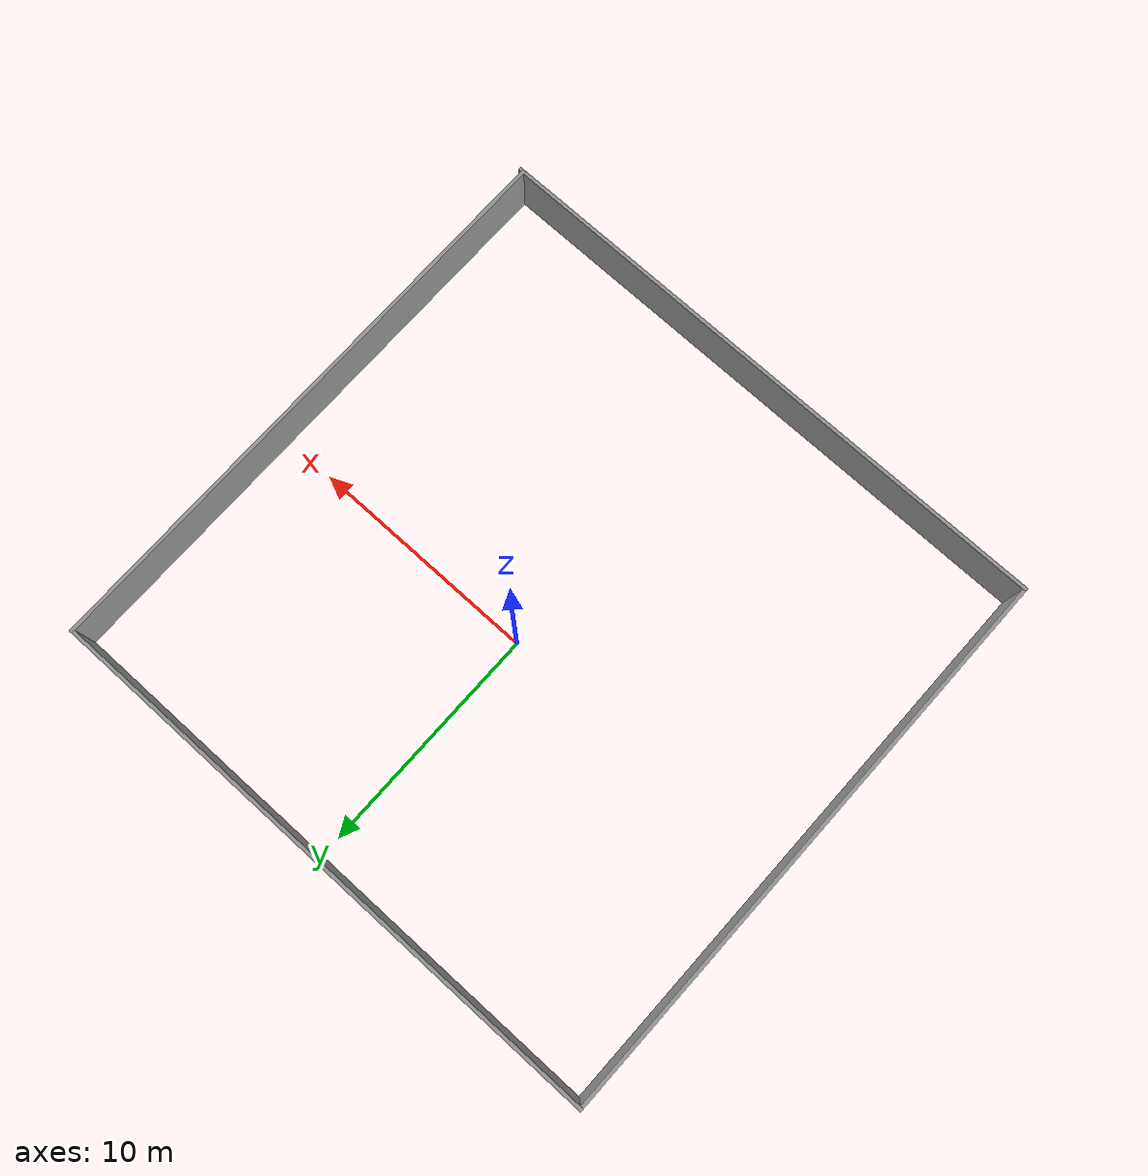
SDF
<?xml version='1.0'?>
<sdf version='1.7'>
  <model name='office'>
    <pose>-0.322117 -1.48629 0 0 -0 0</pose>
    <link name='Wall_0'>
      <collision name='Wall_0_Collision'>
        <geometry>
          <box>
            <size>25 0.15 2.5</size>
          </box>
        </geometry>
        <pose>0 0 1.25 0 -0 0</pose>
      </collision>
      <visual name='Wall_0_Visual'>
        <pose>0 0 1.25 0 -0 0</pose>
        <geometry>
          <box>
            <size>25 0.15 2.5</size>
          </box>
        </geometry>
        <material>
          <script>
            <uri>file://media/materials/scripts/gazebo.material</uri>
            <name>Gazebo/Grey</name>
          </script>
          <ambient>1 1 1 1</ambient>
        </material>
        <meta>
          <layer>0</layer>
        </meta>
      </visual>
      <pose>-12.675 -0.001862 0 0 -0 -1.57079</pose>
    </link>
    <link name='Wall_2'>
      <collision name='Wall_2_Collision'>
        <geometry>
          <box>
            <size>25.5 0.15 2.5</size>
          </box>
        </geometry>
        <pose>0 0 1.25 0 -0 0</pose>
      </collision>
      <visual name='Wall_2_Visual'>
        <pose>0 0 1.25 0 -0 0</pose>
        <geometry>
          <box>
            <size>25.5 0.15 2.5</size>
          </box>
        </geometry>
        <material>
          <script>
            <uri>file://media/materials/scripts/gazebo.material</uri>
            <name>Gazebo/Grey</name>
          </script>
          <ambient>1 1 1 1</ambient>
        </material>
        <meta>
          <layer>0</layer>
        </meta>
      </visual>
      <pose>0.000117 -12.4267 0 0 -0 0</pose>
    </link>
    <link name='Wall_4'>
      <collision name='Wall_4_Collision'>
        <geometry>
          <box>
            <size>25.25 0.15 2.5</size>
          </box>
        </geometry>
        <pose>0 0 1.25 0 -0 0</pose>
      </collision>
      <visual name='Wall_4_Visual'>
        <pose>0 0 1.25 0 -0 0</pose>
        <geometry>
          <box>
            <size>25.25 0.15 2.5</size>
          </box>
        </geometry>
        <material>
          <script>
            <uri>file://media/materials/scripts/gazebo.material</uri>
            <name>Gazebo/Grey</name>
          </script>
          <ambient>1 1 1 1</ambient>
        </material>
        <meta>
          <layer>0</layer>
        </meta>
      </visual>
      <pose>-0.125116 12.423 0 0 -0 0</pose>
    </link>
    <link name='Wall_6'>
      <collision name='Wall_6_Collision'>
        <geometry>
          <box>
            <size>25 0.15 2.5</size>
          </box>
        </geometry>
        <pose>0 0 1.25 0 -0 0</pose>
      </collision>
      <visual name='Wall_6_Visual'>
        <pose>0 0 1.25 0 -0 0</pose>
        <geometry>
          <box>
            <size>25 0.15 2.5</size>
          </box>
        </geometry>
        <material>
          <script>
            <uri>file://media/materials/scripts/gazebo.material</uri>
            <name>Gazebo/Grey</name>
          </script>
          <ambient>1 1 1 1</ambient>
        </material>
        <meta>
          <layer>0</layer>
        </meta>
      </visual>
      <pose>12.5541 0.00186 0 0 -0 -1.5708</pose>
    </link>
    <link name='Wall_7'>
      <collision name='Wall_7_Collision'>
        <geometry>
          <box>
            <size>0.15 0.15 2.5</size>
          </box>
        </geometry>
        <pose>0 0 1.25 0 -0 0</pose>
      </collision>
      <visual name='Wall_7_Visual'>
        <pose>0 0 1.25 0 -0 0</pose>
        <geometry>
          <box>
            <size>0.15 0.15 2.5</size>
          </box>
        </geometry>
        <material>
          <script>
            <uri>file://media/materials/scripts/gazebo.material</uri>
            <name>Gazebo/Grey</name>
          </script>
          <ambient>1 1 1 1</ambient>
        </material>
        <meta>
          <layer>0</layer>
        </meta>
      </visual>
      <pose>12.5541 -12.4231 0 0 -0 0</pose>
    </link>
    <static>1</static>
  </model>
</sdf>
